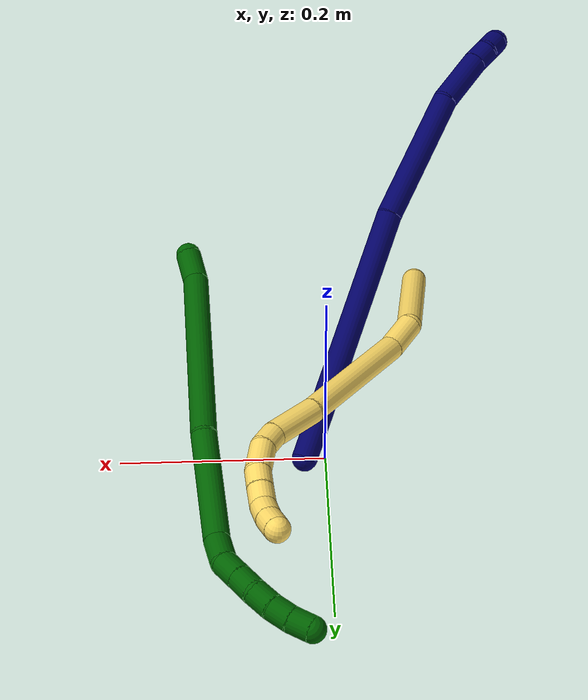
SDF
<sdf version="1.7">
 <world name="default">
  <model name="photoneo_s_sensor">
   <static>1</static>
   <pose>0 0 2 1.57079 1.57079 3.14159</pose>
   <link name="link">
    <inertial><mass>0.1</mass></inertial>
    <sensor name="sensor" type="depth">
     <update_rate>30</update_rate>
     <camera>
      <horizontal_fov>1.22</horizontal_fov>
      <image><width>1920</width><height>1200</height><format>B8G8R8</format></image>
      <clip><near>0.1</near><far>4</far></clip>
      <depth_camera><output>points</output></depth_camera>
     </camera>
     <plugin name="camera_plugin" filename="libgazebo_ros_depth_camera.so">
      <baseline>0.2</baseline>
      <alwaysOn>1</alwaysOn>
      <updateRate>0.0</updateRate>
      <cameraName>camera_ir</cameraName>
      <imageTopicName>/camera/color/image_raw</imageTopicName>
      <cameraInfoTopicName>/camera/color/camera_info</cameraInfoTopicName>
      <depthImageTopicName>/camera/depth/image_raw</depthImageTopicName>
      <depthImageCameraInfoTopicName>/camera/depth/camera_info</depthImageCameraInfoTopicName>
      <pointCloudTopicName>/camera/depth/points</pointCloudTopicName>
      <frameName>fr_optical</frameName>
      <pointCloudCutoff>0.1</pointCloudCutoff>
      <pointCloudCutoffMax>2.0</pointCloudCutoffMax>
      <distortionK1>0</distortionK1>
      <distortionK2>0</distortionK2>
      <distortionK3>0</distortionK3>
      <distortionT1>0</distortionT1>
      <distortionT2>0</distortionT2>
      <CxPrime>0</CxPrime>
      <Cx>0</Cx>
      <Cy>0</Cy>
      <focalLength>0</focalLength>
      <hackBaseline>0</hackBaseline>
     </plugin>
    </sensor>
   </link>
  </model>
  <model name="bin">
   <static>1</static>
   <link name="bottom">
    <collision name="collision-bottom">
     <pose>0 0 -0.01 0 -0 0</pose>
     <geometry><box><size>0.8 0.6 0.02</size></box></geometry>
     <surface>
      <friction><ode><mu>100</mu><mu2>100</mu2></ode></friction>
      <contact><collide_bitmask>65535</collide_bitmask></contact>
     </surface>
    </collision>
   </link>
   <link name="west_wall">
    <collision name="collision-west_wall">
     <pose>-0.41 0 0.1 0 -0 0</pose>
     <geometry><box><size>0.02 0.6 0.2</size></box></geometry>
     <surface>
      <friction><ode><mu>100</mu><mu2>100</mu2></ode></friction>
      <contact><collide_bitmask>65535</collide_bitmask></contact>
     </surface>
    </collision>
   </link>
   <link name="east_wall">
    <collision name="collision-east_wall">
     <pose>0.41 0 0.1 0 -0 0</pose>
     <geometry><box><size>0.02 0.6 0.2</size></box></geometry>
     <surface>
      <friction><ode><mu>100</mu><mu2>100</mu2></ode></friction>
      <contact><collide_bitmask>65535</collide_bitmask></contact>
     </surface>
    </collision>
   </link>
   <link name="south_wall">
    <collision name="collision-south_wall">
     <pose>0 -0.31 0.1 0 -0 0</pose>
     <geometry><box><size>0.8 0.02 0.2</size></box></geometry>
     <surface>
      <friction><ode><mu>100</mu><mu2>100</mu2></ode></friction>
      <contact><collide_bitmask>65535</collide_bitmask></contact>
     </surface>
    </collision>
   </link>
   <link name="north_wall">
    <collision name="collision-north_wall">
     <pose>0 0.31 0.1 0 -0 0</pose>
     <geometry><box><size>0.8 0.02 0.2</size></box></geometry>
     <surface>
      <friction><ode><mu>100</mu><mu2>100</mu2></ode></friction>
      <contact><collide_bitmask>65535</collide_bitmask></contact>
     </surface>
    </collision>
   </link>
  </model>
  <model name="5">
   <static>0</static>
   <link name="5">
    <collision name="collision-cylinder-e_1_1_4">
     <pose>0.051582 0.026971 -0.020256 -2.21497 0.991675 -1.6502</pose>
     <geometry><cylinder><radius>0.0125</radius><length>0.123263</length></cylinder></geometry>
     <surface>
      <friction><ode><mu>1.16</mu><mu2>1.16</mu2><slip1>0</slip1><slip2>0</slip2></ode></friction>
      <contact><ode><kp>1e+06</kp><kd>1</kd><max_vel>0</max_vel><min_depth>0.001</min_depth></ode></contact>
     </surface>
    </collision>
    <visual name="visual-cylinder-e_1_1_4">
     <pose>0.051582 0.026971 -0.020256 -2.21497 0.991675 -1.6502</pose>
     <geometry><cylinder><radius>0.0125</radius><length>0.123263</length></cylinder></geometry>
     <material><ambient>1 0.858824 0.4 1</ambient></material>
    </visual>
    <collision name="collision-cylinder-e_2_4_5">
     <pose>0.116227 0.069155 -0.04052 -1.57127 0.709479 -0.709786</pose>
     <geometry><cylinder><radius>0.0125</radius><length>0.040104</length></cylinder></geometry>
     <surface>
      <friction><ode><mu>1.16</mu><mu2>1.16</mu2><slip1>0</slip1><slip2>0</slip2></ode></friction>
      <contact><ode><kp>1e+06</kp><kd>1</kd><max_vel>0</max_vel><min_depth>0.001</min_depth></ode></contact>
     </surface>
    </collision>
    <visual name="visual-cylinder-e_2_4_5">
     <pose>0.116227 0.069155 -0.04052 -1.57127 0.709479 -0.709786</pose>
     <geometry><cylinder><radius>0.0125</radius><length>0.040104</length></cylinder></geometry>
     <material><ambient>1 0.858824 0.4 1</ambient></material>
    </visual>
    <collision name="collision-cylinder-e_3_5_6">
     <pose>0.170898 0.142988 -0.052031 -1.76459 0.608386 -0.728981</pose>
     <geometry><cylinder><radius>0.0125</radius><length>0.145602</length></cylinder></geometry>
     <surface>
      <friction><ode><mu>1.16</mu><mu2>1.16</mu2><slip1>0</slip1><slip2>0</slip2></ode></friction>
      <contact><ode><kp>1e+06</kp><kd>1</kd><max_vel>0</max_vel><min_depth>0.001</min_depth></ode></contact>
     </surface>
    </collision>
    <visual name="visual-cylinder-e_3_5_6">
     <pose>0.170898 0.142988 -0.052031 -1.76459 0.608386 -0.728981</pose>
     <geometry><cylinder><radius>0.0125</radius><length>0.145602</length></cylinder></geometry>
     <material><ambient>1 0.858824 0.4 1</ambient></material>
    </visual>
    <collision name="collision-cylinder-e_4_6_7">
     <pose>0.225113 0.2259 -0.066315 -1.6847 0.476025 -0.531056</pose>
     <geometry><cylinder><radius>0.0125</radius><length>0.055018</length></cylinder></geometry>
     <surface>
      <friction><ode><mu>1.16</mu><mu2>1.16</mu2><slip1>0</slip1><slip2>0</slip2></ode></friction>
      <contact><ode><kp>1e+06</kp><kd>1</kd><max_vel>0</max_vel><min_depth>0.001</min_depth></ode></contact>
     </surface>
    </collision>
    <visual name="visual-cylinder-e_4_6_7">
     <pose>0.225113 0.2259 -0.066315 -1.6847 0.476025 -0.531056</pose>
     <geometry><cylinder><radius>0.0125</radius><length>0.055018</length></cylinder></geometry>
     <material><ambient>1 0.858824 0.4 1</ambient></material>
    </visual>
    <collision name="collision-cylinder-e_5_7_8">
     <pose>0.245323 0.258341 -0.070453 -1.73597 0.743999 -0.863243</pose>
     <geometry><cylinder><radius>0.0125</radius><length>0.022456</length></cylinder></geometry>
     <surface>
      <friction><ode><mu>1.16</mu><mu2>1.16</mu2><slip1>0</slip1><slip2>0</slip2></ode></friction>
      <contact><ode><kp>1e+06</kp><kd>1</kd><max_vel>0</max_vel><min_depth>0.001</min_depth></ode></contact>
     </surface>
    </collision>
    <visual name="visual-cylinder-e_5_7_8">
     <pose>0.245323 0.258341 -0.070453 -1.73597 0.743999 -0.863243</pose>
     <geometry><cylinder><radius>0.0125</radius><length>0.022456</length></cylinder></geometry>
     <material><ambient>1 0.858824 0.4 1</ambient></material>
    </visual>
    <collision name="collision-cylinder-e_6_8_9">
     <pose>0.267235 0.273977 -0.072475 -1.65927 1.08708 -1.16705</pose>
     <geometry><cylinder><radius>0.0125</radius><length>0.032324</length></cylinder></geometry>
     <surface>
      <friction><ode><mu>1.16</mu><mu2>1.16</mu2><slip1>0</slip1><slip2>0</slip2></ode></friction>
      <contact><ode><kp>1e+06</kp><kd>1</kd><max_vel>0</max_vel><min_depth>0.001</min_depth></ode></contact>
     </surface>
    </collision>
    <visual name="visual-cylinder-e_6_8_9">
     <pose>0.267235 0.273977 -0.072475 -1.65927 1.08708 -1.16705</pose>
     <geometry><cylinder><radius>0.0125</radius><length>0.032324</length></cylinder></geometry>
     <material><ambient>1 0.858824 0.4 1</ambient></material>
    </visual>
    <collision name="collision-cylinder-e_7_9_10">
     <pose>0.291476 0.283787 -0.072955 -1.49166 1.34037 -1.26402</pose>
     <geometry><cylinder><radius>0.0125</radius><length>0.020407</length></cylinder></geometry>
     <surface>
      <friction><ode><mu>1.16</mu><mu2>1.16</mu2><slip1>0</slip1><slip2>0</slip2></ode></friction>
      <contact><ode><kp>1e+06</kp><kd>1</kd><max_vel>0</max_vel><min_depth>0.001</min_depth></ode></contact>
     </surface>
    </collision>
    <visual name="visual-cylinder-e_7_9_10">
     <pose>0.291476 0.283787 -0.072955 -1.49166 1.34037 -1.26402</pose>
     <geometry><cylinder><radius>0.0125</radius><length>0.020407</length></cylinder></geometry>
     <material><ambient>1 0.858824 0.4 1</ambient></material>
    </visual>
    <collision name="collision-cylinder-e_8_10_11">
     <pose>0.311459 0.288135 -0.072115 -1.25742 1.36211 -1.065</pose>
     <geometry><cylinder><radius>0.0125</radius><length>0.020544</length></cylinder></geometry>
     <surface>
      <friction><ode><mu>1.16</mu><mu2>1.16</mu2><slip1>0</slip1><slip2>0</slip2></ode></friction>
      <contact><ode><kp>1e+06</kp><kd>1</kd><max_vel>0</max_vel><min_depth>0.001</min_depth></ode></contact>
     </surface>
    </collision>
    <visual name="visual-cylinder-e_8_10_11">
     <pose>0.311459 0.288135 -0.072115 -1.25742 1.36211 -1.065</pose>
     <geometry><cylinder><radius>0.0125</radius><length>0.020544</length></cylinder></geometry>
     <material><ambient>1 0.858824 0.4 1</ambient></material>
    </visual>
    <collision name="collision-cylinder-e_9_11_12">
     <pose>0.331183 0.291193 -0.074091 -2.76738 1.28643 -2.64678</pose>
     <geometry><cylinder><radius>0.0125</radius><length>0.020158</length></cylinder></geometry>
     <surface>
      <friction><ode><mu>1.16</mu><mu2>1.16</mu2><slip1>0</slip1><slip2>0</slip2></ode></friction>
      <contact><ode><kp>1e+06</kp><kd>1</kd><max_vel>0</max_vel><min_depth>0.001</min_depth></ode></contact>
     </surface>
    </collision>
    <visual name="visual-cylinder-e_9_11_12">
     <pose>0.331183 0.291193 -0.074091 -2.76738 1.28643 -2.64678</pose>
     <geometry><cylinder><radius>0.0125</radius><length>0.020158</length></cylinder></geometry>
     <material><ambient>1 0.858824 0.4 1</ambient></material>
    </visual>
    <collision name="collision-cylinder-e_10_12_2">
     <pose>0.350328 0.292003 -0.080115 3.07571 1.22623 3.04799</pose>
     <geometry><cylinder><radius>0.0125</radius><length>0.020125</length></cylinder></geometry>
     <surface>
      <friction><ode><mu>1.16</mu><mu2>1.16</mu2><slip1>0</slip1><slip2>0</slip2></ode></friction>
      <contact><ode><kp>1e+06</kp><kd>1</kd><max_vel>0</max_vel><min_depth>0.001</min_depth></ode></contact>
     </surface>
    </collision>
    <visual name="visual-cylinder-e_10_12_2">
     <pose>0.350328 0.292003 -0.080115 3.07571 1.22623 3.04799</pose>
     <geometry><cylinder><radius>0.0125</radius><length>0.020125</length></cylinder></geometry>
     <material><ambient>1 0.858824 0.4 1</ambient></material>
    </visual>
    <collision name="collision-sphere-2">
     <pose>0.359799 0.291779 -0.083506 0 -0 0</pose>
     <geometry><sphere><radius>0.0125</radius></sphere></geometry>
     <surface>
      <friction><ode><mu>1.16</mu><mu2>1.16</mu2><slip1>0</slip1><slip2>0</slip2></ode></friction>
      <contact><ode><kp>1e+06</kp><kd>1</kd><max_vel>0</max_vel><min_depth>0.001</min_depth></ode></contact>
     </surface>
    </collision>
    <visual name="visual-sphere-2">
     <pose>0.359799 0.291779 -0.083506 0 -0 0</pose>
     <geometry><sphere><radius>0.0125</radius></sphere></geometry>
     <material><ambient>1 0.858824 0.4 1</ambient></material>
    </visual>
    <collision name="collision-sphere-12">
     <pose>0.340857 0.292226 -0.076723 0 -0 0</pose>
     <geometry><sphere><radius>0.0125</radius></sphere></geometry>
     <surface>
      <friction><ode><mu>1.16</mu><mu2>1.16</mu2><slip1>0</slip1><slip2>0</slip2></ode></friction>
      <contact><ode><kp>1e+06</kp><kd>1</kd><max_vel>0</max_vel><min_depth>0.001</min_depth></ode></contact>
     </surface>
    </collision>
    <visual name="visual-sphere-12">
     <pose>0.340857 0.292226 -0.076723 0 -0 0</pose>
     <geometry><sphere><radius>0.0125</radius></sphere></geometry>
     <material><ambient>1 0.858824 0.4 1</ambient></material>
    </visual>
    <collision name="collision-sphere-11">
     <pose>0.321508 0.290159 -0.071459 0 -0 0</pose>
     <geometry><sphere><radius>0.0125</radius></sphere></geometry>
     <surface>
      <friction><ode><mu>1.16</mu><mu2>1.16</mu2><slip1>0</slip1><slip2>0</slip2></ode></friction>
      <contact><ode><kp>1e+06</kp><kd>1</kd><max_vel>0</max_vel><min_depth>0.001</min_depth></ode></contact>
     </surface>
    </collision>
    <visual name="visual-sphere-11">
     <pose>0.321508 0.290159 -0.071459 0 -0 0</pose>
     <geometry><sphere><radius>0.0125</radius></sphere></geometry>
     <material><ambient>1 0.858824 0.4 1</ambient></material>
    </visual>
    <collision name="collision-sphere-10">
     <pose>0.30141 0.28611 -0.072771 0 -0 0</pose>
     <geometry><sphere><radius>0.0125</radius></sphere></geometry>
     <surface>
      <friction><ode><mu>1.16</mu><mu2>1.16</mu2><slip1>0</slip1><slip2>0</slip2></ode></friction>
      <contact><ode><kp>1e+06</kp><kd>1</kd><max_vel>0</max_vel><min_depth>0.001</min_depth></ode></contact>
     </surface>
    </collision>
    <visual name="visual-sphere-10">
     <pose>0.30141 0.28611 -0.072771 0 -0 0</pose>
     <geometry><sphere><radius>0.0125</radius></sphere></geometry>
     <material><ambient>1 0.858824 0.4 1</ambient></material>
    </visual>
    <collision name="collision-sphere-9">
     <pose>0.281543 0.281464 -0.073139 0 -0 0</pose>
     <geometry><sphere><radius>0.0125</radius></sphere></geometry>
     <surface>
      <friction><ode><mu>1.16</mu><mu2>1.16</mu2><slip1>0</slip1><slip2>0</slip2></ode></friction>
      <contact><ode><kp>1e+06</kp><kd>1</kd><max_vel>0</max_vel><min_depth>0.001</min_depth></ode></contact>
     </surface>
    </collision>
    <visual name="visual-sphere-9">
     <pose>0.281543 0.281464 -0.073139 0 -0 0</pose>
     <geometry><sphere><radius>0.0125</radius></sphere></geometry>
     <material><ambient>1 0.858824 0.4 1</ambient></material>
    </visual>
    <collision name="collision-sphere-4">
     <pose>0.103164 0.053941 -0.040512 0 -0 0</pose>
     <geometry><sphere><radius>0.0125</radius></sphere></geometry>
     <surface>
      <friction><ode><mu>1.16</mu><mu2>1.16</mu2><slip1>0</slip1><slip2>0</slip2></ode></friction>
      <contact><ode><kp>1e+06</kp><kd>1</kd><max_vel>0</max_vel><min_depth>0.001</min_depth></ode></contact>
     </surface>
    </collision>
    <visual name="visual-sphere-4">
     <pose>0.103164 0.053941 -0.040512 0 -0 0</pose>
     <geometry><sphere><radius>0.0125</radius></sphere></geometry>
     <material><ambient>1 0.858824 0.4 1</ambient></material>
    </visual>
    <collision name="collision-sphere-1">
     <geometry><sphere><radius>0.0125</radius></sphere></geometry>
     <surface>
      <friction><ode><mu>1.16</mu><mu2>1.16</mu2><slip1>0</slip1><slip2>0</slip2></ode></friction>
      <contact><ode><kp>1e+06</kp><kd>1</kd><max_vel>0</max_vel><min_depth>0.001</min_depth></ode></contact>
     </surface>
    </collision>
    <visual name="visual-sphere-1">
     <geometry><sphere><radius>0.0125</radius></sphere></geometry>
     <material><ambient>1 0.858824 0.4 1</ambient></material>
    </visual>
    <collision name="collision-sphere-8">
     <pose>0.252927 0.26649 -0.071811 0 -0 0</pose>
     <geometry><sphere><radius>0.0125</radius></sphere></geometry>
     <surface>
      <friction><ode><mu>1.16</mu><mu2>1.16</mu2><slip1>0</slip1><slip2>0</slip2></ode></friction>
      <contact><ode><kp>1e+06</kp><kd>1</kd><max_vel>0</max_vel><min_depth>0.001</min_depth></ode></contact>
     </surface>
    </collision>
    <visual name="visual-sphere-8">
     <pose>0.252927 0.26649 -0.071811 0 -0 0</pose>
     <geometry><sphere><radius>0.0125</radius></sphere></geometry>
     <material><ambient>1 0.858824 0.4 1</ambient></material>
    </visual>
    <collision name="collision-sphere-5">
     <pose>0.12929 0.084368 -0.040527 0 -0 0</pose>
     <geometry><sphere><radius>0.0125</radius></sphere></geometry>
     <surface>
      <friction><ode><mu>1.16</mu><mu2>1.16</mu2><slip1>0</slip1><slip2>0</slip2></ode></friction>
      <contact><ode><kp>1e+06</kp><kd>1</kd><max_vel>0</max_vel><min_depth>0.001</min_depth></ode></contact>
     </surface>
    </collision>
    <visual name="visual-sphere-5">
     <pose>0.12929 0.084368 -0.040527 0 -0 0</pose>
     <geometry><sphere><radius>0.0125</radius></sphere></geometry>
     <material><ambient>1 0.858824 0.4 1</ambient></material>
    </visual>
    <collision name="collision-sphere-6">
     <pose>0.212507 0.201608 -0.063536 0 -0 0</pose>
     <geometry><sphere><radius>0.0125</radius></sphere></geometry>
     <surface>
      <friction><ode><mu>1.16</mu><mu2>1.16</mu2><slip1>0</slip1><slip2>0</slip2></ode></friction>
      <contact><ode><kp>1e+06</kp><kd>1</kd><max_vel>0</max_vel><min_depth>0.001</min_depth></ode></contact>
     </surface>
    </collision>
    <visual name="visual-sphere-6">
     <pose>0.212507 0.201608 -0.063536 0 -0 0</pose>
     <geometry><sphere><radius>0.0125</radius></sphere></geometry>
     <material><ambient>1 0.858824 0.4 1</ambient></material>
    </visual>
    <collision name="collision-sphere-7">
     <pose>0.237719 0.250192 -0.069094 0 -0 0</pose>
     <geometry><sphere><radius>0.0125</radius></sphere></geometry>
     <surface>
      <friction><ode><mu>1.16</mu><mu2>1.16</mu2><slip1>0</slip1><slip2>0</slip2></ode></friction>
      <contact><ode><kp>1e+06</kp><kd>1</kd><max_vel>0</max_vel><min_depth>0.001</min_depth></ode></contact>
     </surface>
    </collision>
    <visual name="visual-sphere-7">
     <pose>0.237719 0.250192 -0.069094 0 -0 0</pose>
     <geometry><sphere><radius>0.0125</radius></sphere></geometry>
     <material><ambient>1 0.858824 0.4 1</ambient></material>
    </visual>
    <inertial>
     <pose>0.177015 0.15492 -0.050694 0 -0 0</pose>
     <mass>0.5</mass>
     <inertia>
      <ixx>-4.6e-05</ixx>
      <ixy>0</ixy>
      <ixz>0</ixz>
      <iyy>-3.3e-05</iyy>
      <iyz>0</iyz>
      <izz>-0.000619</izz>
     </inertia>
    </inertial>
   </link>
   <pose>-0.10549 -0.250383 0.011482 3.05425 0.049175 1.88548</pose>
  </model>
  <model name="6">
   <static>0</static>
   <link name="6">
    <collision name="collision-cylinder-e_1_1_4">
     <pose>0.009204 0.013433 0.002909 -1.35756 0.590048 -0.480785</pose>
     <geometry><cylinder><radius>0.0125</radius><length>0.033083</length></cylinder></geometry>
     <surface>
      <friction><ode><mu>1.16</mu><mu2>1.16</mu2><slip1>0</slip1><slip2>0</slip2></ode></friction>
      <contact><ode><kp>1e+06</kp><kd>1</kd><max_vel>0</max_vel><min_depth>0.001</min_depth></ode></contact>
     </surface>
    </collision>
    <visual name="visual-cylinder-e_1_1_4">
     <pose>0.009204 0.013433 0.002909 -1.35756 0.590048 -0.480785</pose>
     <geometry><cylinder><radius>0.0125</radius><length>0.033083</length></cylinder></geometry>
     <material><ambient>0 0.392157 0.003922 1</ambient></material>
    </visual>
    <collision name="collision-cylinder-e_2_4_5">
     <pose>0.073224 0.118461 -0.007285 -1.71288 0.534843 -0.612079</pose>
     <geometry><cylinder><radius>0.0125</radius><length>0.215092</length></cylinder></geometry>
     <surface>
      <friction><ode><mu>1.16</mu><mu2>1.16</mu2><slip1>0</slip1><slip2>0</slip2></ode></friction>
      <contact><ode><kp>1e+06</kp><kd>1</kd><max_vel>0</max_vel><min_depth>0.001</min_depth></ode></contact>
     </surface>
    </collision>
    <visual name="visual-cylinder-e_2_4_5">
     <pose>0.073224 0.118461 -0.007285 -1.71288 0.534843 -0.612079</pose>
     <geometry><cylinder><radius>0.0125</radius><length>0.215092</length></cylinder></geometry>
     <material><ambient>0 0.392157 0.003922 1</ambient></material>
    </visual>
    <collision name="collision-cylinder-e_3_5_6">
     <pose>0.15452 0.258863 -0.014295 -1.44661 0.493844 -0.437975</pose>
     <geometry><cylinder><radius>0.0125</radius><length>0.111722</length></cylinder></geometry>
     <surface>
      <friction><ode><mu>1.16</mu><mu2>1.16</mu2><slip1>0</slip1><slip2>0</slip2></ode></friction>
      <contact><ode><kp>1e+06</kp><kd>1</kd><max_vel>0</max_vel><min_depth>0.001</min_depth></ode></contact>
     </surface>
    </collision>
    <visual name="visual-cylinder-e_3_5_6">
     <pose>0.15452 0.258863 -0.014295 -1.44661 0.493844 -0.437975</pose>
     <geometry><cylinder><radius>0.0125</radius><length>0.111722</length></cylinder></geometry>
     <material><ambient>0 0.392157 0.003922 1</ambient></material>
    </visual>
    <collision name="collision-cylinder-e_4_6_7">
     <pose>0.190649 0.31838 -0.009941 -1.73178 0.726926 -0.840897</pose>
     <geometry><cylinder><radius>0.0125</radius><length>0.029041</length></cylinder></geometry>
     <surface>
      <friction><ode><mu>1.16</mu><mu2>1.16</mu2><slip1>0</slip1><slip2>0</slip2></ode></friction>
      <contact><ode><kp>1e+06</kp><kd>1</kd><max_vel>0</max_vel><min_depth>0.001</min_depth></ode></contact>
     </surface>
    </collision>
    <visual name="visual-cylinder-e_4_6_7">
     <pose>0.190649 0.31838 -0.009941 -1.73178 0.726926 -0.840897</pose>
     <geometry><cylinder><radius>0.0125</radius><length>0.029041</length></cylinder></geometry>
     <material><ambient>0 0.392157 0.003922 1</ambient></material>
    </visual>
    <collision name="collision-cylinder-e_5_7_8">
     <pose>0.211266 0.334708 -0.011368 -1.51531 1.09683 -1.04808</pose>
     <geometry><cylinder><radius>0.0125</radius><length>0.024654</length></cylinder></geometry>
     <surface>
      <friction><ode><mu>1.16</mu><mu2>1.16</mu2><slip1>0</slip1><slip2>0</slip2></ode></friction>
      <contact><ode><kp>1e+06</kp><kd>1</kd><max_vel>0</max_vel><min_depth>0.001</min_depth></ode></contact>
     </surface>
    </collision>
    <visual name="visual-cylinder-e_5_7_8">
     <pose>0.211266 0.334708 -0.011368 -1.51531 1.09683 -1.04808</pose>
     <geometry><cylinder><radius>0.0125</radius><length>0.024654</length></cylinder></geometry>
     <material><ambient>0 0.392157 0.003922 1</ambient></material>
    </visual>
    <collision name="collision-cylinder-e_6_8_9">
     <pose>0.232317 0.345591 -0.010802 -1.52261 1.08898 -1.04675</pose>
     <geometry><cylinder><radius>0.0125</radius><length>0.022755</length></cylinder></geometry>
     <surface>
      <friction><ode><mu>1.16</mu><mu2>1.16</mu2><slip1>0</slip1><slip2>0</slip2></ode></friction>
      <contact><ode><kp>1e+06</kp><kd>1</kd><max_vel>0</max_vel><min_depth>0.001</min_depth></ode></contact>
     </surface>
    </collision>
    <visual name="visual-cylinder-e_6_8_9">
     <pose>0.232317 0.345591 -0.010802 -1.52261 1.08898 -1.04675</pose>
     <geometry><cylinder><radius>0.0125</radius><length>0.022755</length></cylinder></geometry>
     <material><ambient>0 0.392157 0.003922 1</ambient></material>
    </visual>
    <collision name="collision-cylinder-e_7_9_10">
     <pose>0.251889 0.35506 -0.007443 -0.934501 1.06746 -0.57949</pose>
     <geometry><cylinder><radius>0.0125</radius><length>0.021668</length></cylinder></geometry>
     <surface>
      <friction><ode><mu>1.16</mu><mu2>1.16</mu2><slip1>0</slip1><slip2>0</slip2></ode></friction>
      <contact><ode><kp>1e+06</kp><kd>1</kd><max_vel>0</max_vel><min_depth>0.001</min_depth></ode></contact>
     </surface>
    </collision>
    <visual name="visual-cylinder-e_7_9_10">
     <pose>0.251889 0.35506 -0.007443 -0.934501 1.06746 -0.57949</pose>
     <geometry><cylinder><radius>0.0125</radius><length>0.021668</length></cylinder></geometry>
     <material><ambient>0 0.392157 0.003922 1</ambient></material>
    </visual>
    <collision name="collision-cylinder-e_8_10_11">
     <pose>0.270699 0.361943 -0.000753 -0.641879 1.12301 -0.412291</pose>
     <geometry><cylinder><radius>0.0125</radius><length>0.020677</length></cylinder></geometry>
     <surface>
      <friction><ode><mu>1.16</mu><mu2>1.16</mu2><slip1>0</slip1><slip2>0</slip2></ode></friction>
      <contact><ode><kp>1e+06</kp><kd>1</kd><max_vel>0</max_vel><min_depth>0.001</min_depth></ode></contact>
     </surface>
    </collision>
    <visual name="visual-cylinder-e_8_10_11">
     <pose>0.270699 0.361943 -0.000753 -0.641879 1.12301 -0.412291</pose>
     <geometry><cylinder><radius>0.0125</radius><length>0.020677</length></cylinder></geometry>
     <material><ambient>0 0.392157 0.003922 1</ambient></material>
    </visual>
    <collision name="collision-cylinder-e_9_11_2">
     <pose>0.289993 0.365991 0.006317 -0.374108 1.21185 -0.260787</pose>
     <geometry><cylinder><radius>0.0125</radius><length>0.021309</length></cylinder></geometry>
     <surface>
      <friction><ode><mu>1.16</mu><mu2>1.16</mu2><slip1>0</slip1><slip2>0</slip2></ode></friction>
      <contact><ode><kp>1e+06</kp><kd>1</kd><max_vel>0</max_vel><min_depth>0.001</min_depth></ode></contact>
     </surface>
    </collision>
    <visual name="visual-cylinder-e_9_11_2">
     <pose>0.289993 0.365991 0.006317 -0.374108 1.21185 -0.260787</pose>
     <geometry><cylinder><radius>0.0125</radius><length>0.021309</length></cylinder></geometry>
     <material><ambient>0 0.392157 0.003922 1</ambient></material>
    </visual>
    <collision name="collision-sphere-2">
     <pose>0.299969 0.367359 0.009801 0 -0 0</pose>
     <geometry><sphere><radius>0.0125</radius></sphere></geometry>
     <surface>
      <friction><ode><mu>1.16</mu><mu2>1.16</mu2><slip1>0</slip1><slip2>0</slip2></ode></friction>
      <contact><ode><kp>1e+06</kp><kd>1</kd><max_vel>0</max_vel><min_depth>0.001</min_depth></ode></contact>
     </surface>
    </collision>
    <visual name="visual-sphere-2">
     <pose>0.299969 0.367359 0.009801 0 -0 0</pose>
     <geometry><sphere><radius>0.0125</radius></sphere></geometry>
     <material><ambient>0 0.392157 0.003922 1</ambient></material>
    </visual>
    <collision name="collision-sphere-11">
     <pose>0.280018 0.364623 0.002833 0 -0 0</pose>
     <geometry><sphere><radius>0.0125</radius></sphere></geometry>
     <surface>
      <friction><ode><mu>1.16</mu><mu2>1.16</mu2><slip1>0</slip1><slip2>0</slip2></ode></friction>
      <contact><ode><kp>1e+06</kp><kd>1</kd><max_vel>0</max_vel><min_depth>0.001</min_depth></ode></contact>
     </surface>
    </collision>
    <visual name="visual-sphere-11">
     <pose>0.280018 0.364623 0.002833 0 -0 0</pose>
     <geometry><sphere><radius>0.0125</radius></sphere></geometry>
     <material><ambient>0 0.392157 0.003922 1</ambient></material>
    </visual>
    <collision name="collision-sphere-10">
     <pose>0.261379 0.359264 -0.004338 0 -0 0</pose>
     <geometry><sphere><radius>0.0125</radius></sphere></geometry>
     <surface>
      <friction><ode><mu>1.16</mu><mu2>1.16</mu2><slip1>0</slip1><slip2>0</slip2></ode></friction>
      <contact><ode><kp>1e+06</kp><kd>1</kd><max_vel>0</max_vel><min_depth>0.001</min_depth></ode></contact>
     </surface>
    </collision>
    <visual name="visual-sphere-10">
     <pose>0.261379 0.359264 -0.004338 0 -0 0</pose>
     <geometry><sphere><radius>0.0125</radius></sphere></geometry>
     <material><ambient>0 0.392157 0.003922 1</ambient></material>
    </visual>
    <collision name="collision-sphere-9">
     <pose>0.242399 0.350857 -0.010548 0 -0 0</pose>
     <geometry><sphere><radius>0.0125</radius></sphere></geometry>
     <surface>
      <friction><ode><mu>1.16</mu><mu2>1.16</mu2><slip1>0</slip1><slip2>0</slip2></ode></friction>
      <contact><ode><kp>1e+06</kp><kd>1</kd><max_vel>0</max_vel><min_depth>0.001</min_depth></ode></contact>
     </surface>
    </collision>
    <visual name="visual-sphere-9">
     <pose>0.242399 0.350857 -0.010548 0 -0 0</pose>
     <geometry><sphere><radius>0.0125</radius></sphere></geometry>
     <material><ambient>0 0.392157 0.003922 1</ambient></material>
    </visual>
    <collision name="collision-sphere-4">
     <pose>0.018407 0.026866 0.005817 0 -0 0</pose>
     <geometry><sphere><radius>0.0125</radius></sphere></geometry>
     <surface>
      <friction><ode><mu>1.16</mu><mu2>1.16</mu2><slip1>0</slip1><slip2>0</slip2></ode></friction>
      <contact><ode><kp>1e+06</kp><kd>1</kd><max_vel>0</max_vel><min_depth>0.001</min_depth></ode></contact>
     </surface>
    </collision>
    <visual name="visual-sphere-4">
     <pose>0.018407 0.026866 0.005817 0 -0 0</pose>
     <geometry><sphere><radius>0.0125</radius></sphere></geometry>
     <material><ambient>0 0.392157 0.003922 1</ambient></material>
    </visual>
    <collision name="collision-sphere-1">
     <geometry><sphere><radius>0.0125</radius></sphere></geometry>
     <surface>
      <friction><ode><mu>1.16</mu><mu2>1.16</mu2><slip1>0</slip1><slip2>0</slip2></ode></friction>
      <contact><ode><kp>1e+06</kp><kd>1</kd><max_vel>0</max_vel><min_depth>0.001</min_depth></ode></contact>
     </surface>
    </collision>
    <visual name="visual-sphere-1">
     <geometry><sphere><radius>0.0125</radius></sphere></geometry>
     <material><ambient>0 0.392157 0.003922 1</ambient></material>
    </visual>
    <collision name="collision-sphere-8">
     <pose>0.222235 0.340325 -0.011056 0 -0 0</pose>
     <geometry><sphere><radius>0.0125</radius></sphere></geometry>
     <surface>
      <friction><ode><mu>1.16</mu><mu2>1.16</mu2><slip1>0</slip1><slip2>0</slip2></ode></friction>
      <contact><ode><kp>1e+06</kp><kd>1</kd><max_vel>0</max_vel><min_depth>0.001</min_depth></ode></contact>
     </surface>
    </collision>
    <visual name="visual-sphere-8">
     <pose>0.222235 0.340325 -0.011056 0 -0 0</pose>
     <geometry><sphere><radius>0.0125</radius></sphere></geometry>
     <material><ambient>0 0.392157 0.003922 1</ambient></material>
    </visual>
    <collision name="collision-sphere-5">
     <pose>0.128041 0.210055 -0.020388 0 -0 0</pose>
     <geometry><sphere><radius>0.0125</radius></sphere></geometry>
     <surface>
      <friction><ode><mu>1.16</mu><mu2>1.16</mu2><slip1>0</slip1><slip2>0</slip2></ode></friction>
      <contact><ode><kp>1e+06</kp><kd>1</kd><max_vel>0</max_vel><min_depth>0.001</min_depth></ode></contact>
     </surface>
    </collision>
    <visual name="visual-sphere-5">
     <pose>0.128041 0.210055 -0.020388 0 -0 0</pose>
     <geometry><sphere><radius>0.0125</radius></sphere></geometry>
     <material><ambient>0 0.392157 0.003922 1</ambient></material>
    </visual>
    <collision name="collision-sphere-6">
     <pose>0.180999 0.307671 -0.008202 0 -0 0</pose>
     <geometry><sphere><radius>0.0125</radius></sphere></geometry>
     <surface>
      <friction><ode><mu>1.16</mu><mu2>1.16</mu2><slip1>0</slip1><slip2>0</slip2></ode></friction>
      <contact><ode><kp>1e+06</kp><kd>1</kd><max_vel>0</max_vel><min_depth>0.001</min_depth></ode></contact>
     </surface>
    </collision>
    <visual name="visual-sphere-6">
     <pose>0.180999 0.307671 -0.008202 0 -0 0</pose>
     <geometry><sphere><radius>0.0125</radius></sphere></geometry>
     <material><ambient>0 0.392157 0.003922 1</ambient></material>
    </visual>
    <collision name="collision-sphere-7">
     <pose>0.200298 0.32909 -0.01168 0 -0 0</pose>
     <geometry><sphere><radius>0.0125</radius></sphere></geometry>
     <surface>
      <friction><ode><mu>1.16</mu><mu2>1.16</mu2><slip1>0</slip1><slip2>0</slip2></ode></friction>
      <contact><ode><kp>1e+06</kp><kd>1</kd><max_vel>0</max_vel><min_depth>0.001</min_depth></ode></contact>
     </surface>
    </collision>
    <visual name="visual-sphere-7">
     <pose>0.200298 0.32909 -0.01168 0 -0 0</pose>
     <geometry><sphere><radius>0.0125</radius></sphere></geometry>
     <material><ambient>0 0.392157 0.003922 1</ambient></material>
    </visual>
    <inertial>
     <pose>0.133167 0.206366 -0.00785 0 -0 0</pose>
     <mass>0.5</mass>
     <inertia>
      <ixx>0.000252</ixx>
      <ixy>0</ixy>
      <ixz>0</ixz>
      <iyy>-0.000242</iyy>
      <iyz>0</iyz>
      <izz>-0.001324</izz>
     </inertia>
    </inertial>
   </link>
   <pose>0.131039 -0.1948 0.099856 -2.78864 -0.31426 2.60812</pose>
  </model>
  <model name="7">
   <static>0</static>
   <link name="7">
    <collision name="collision-cylinder-e_1_1_4">
     <pose>3e-06 0.000513 0.130298 -0.003939 2.4e-05 -0</pose>
     <geometry><cylinder><radius>0.0125</radius><length>0.260598</length></cylinder></geometry>
     <surface>
      <friction><ode><mu>1.16</mu><mu2>1.16</mu2><slip1>0</slip1><slip2>0</slip2></ode></friction>
      <contact><ode><kp>1e+06</kp><kd>1</kd><max_vel>0</max_vel><min_depth>0.001</min_depth></ode></contact>
     </surface>
    </collision>
    <visual name="visual-cylinder-e_1_1_4">
     <pose>3e-06 0.000513 0.130298 -0.003939 2.4e-05 -0</pose>
     <geometry><cylinder><radius>0.0125</radius><length>0.260598</length></cylinder></geometry>
     <material><ambient>0.003922 0 0.403922 1</ambient></material>
    </visual>
    <collision name="collision-cylinder-e_2_4_5">
     <pose>0.003391 -0.007315 0.329418 0.120618 0.048791 0.002947</pose>
     <geometry><cylinder><radius>0.0125</radius><length>0.138817</length></cylinder></geometry>
     <surface>
      <friction><ode><mu>1.16</mu><mu2>1.16</mu2><slip1>0</slip1><slip2>0</slip2></ode></friction>
      <contact><ode><kp>1e+06</kp><kd>1</kd><max_vel>0</max_vel><min_depth>0.001</min_depth></ode></contact>
     </surface>
    </collision>
    <visual name="visual-cylinder-e_2_4_5">
     <pose>0.003391 -0.007315 0.329418 0.120618 0.048791 0.002947</pose>
     <geometry><cylinder><radius>0.0125</radius><length>0.138817</length></cylinder></geometry>
     <material><ambient>0.003922 0 0.403922 1</ambient></material>
    </visual>
    <collision name="collision-cylinder-e_3_5_6">
     <pose>0.012306 -0.025372 0.425804 0.338868 0.186989 0.03208</pose>
     <geometry><cylinder><radius>0.0125</radius><length>0.059487</length></cylinder></geometry>
     <surface>
      <friction><ode><mu>1.16</mu><mu2>1.16</mu2><slip1>0</slip1><slip2>0</slip2></ode></friction>
      <contact><ode><kp>1e+06</kp><kd>1</kd><max_vel>0</max_vel><min_depth>0.001</min_depth></ode></contact>
     </surface>
    </collision>
    <visual name="visual-cylinder-e_3_5_6">
     <pose>0.012306 -0.025372 0.425804 0.338868 0.186989 0.03208</pose>
     <geometry><cylinder><radius>0.0125</radius><length>0.059487</length></cylinder></geometry>
     <material><ambient>0.003922 0 0.403922 1</ambient></material>
    </visual>
    <collision name="collision-cylinder-e_4_6_7">
     <pose>0.019419 -0.039275 0.462539 0.428382 0.155829 0.033963</pose>
     <geometry><cylinder><radius>0.0125</radius><length>0.020414</length></cylinder></geometry>
     <surface>
      <friction><ode><mu>1.16</mu><mu2>1.16</mu2><slip1>0</slip1><slip2>0</slip2></ode></friction>
      <contact><ode><kp>1e+06</kp><kd>1</kd><max_vel>0</max_vel><min_depth>0.001</min_depth></ode></contact>
     </surface>
    </collision>
    <visual name="visual-cylinder-e_4_6_7">
     <pose>0.019419 -0.039275 0.462539 0.428382 0.155829 0.033963</pose>
     <geometry><cylinder><radius>0.0125</radius><length>0.020414</length></cylinder></geometry>
     <material><ambient>0.003922 0 0.403922 1</ambient></material>
    </visual>
    <collision name="collision-cylinder-e_5_7_2">
     <pose>0.02537 -0.047598 0.480125 0.456661 0.435864 0.102831</pose>
     <geometry><cylinder><radius>0.0125</radius><length>0.020684</length></cylinder></geometry>
     <surface>
      <friction><ode><mu>1.16</mu><mu2>1.16</mu2><slip1>0</slip1><slip2>0</slip2></ode></friction>
      <contact><ode><kp>1e+06</kp><kd>1</kd><max_vel>0</max_vel><min_depth>0.001</min_depth></ode></contact>
     </surface>
    </collision>
    <visual name="visual-cylinder-e_5_7_2">
     <pose>0.02537 -0.047598 0.480125 0.456661 0.435864 0.102831</pose>
     <geometry><cylinder><radius>0.0125</radius><length>0.020684</length></cylinder></geometry>
     <material><ambient>0.003922 0 0.403922 1</ambient></material>
    </visual>
    <collision name="collision-sphere-2">
     <pose>0.029736 -0.051732 0.48854 0 -0 0</pose>
     <geometry><sphere><radius>0.0125</radius></sphere></geometry>
     <surface>
      <friction><ode><mu>1.16</mu><mu2>1.16</mu2><slip1>0</slip1><slip2>0</slip2></ode></friction>
      <contact><ode><kp>1e+06</kp><kd>1</kd><max_vel>0</max_vel><min_depth>0.001</min_depth></ode></contact>
     </surface>
    </collision>
    <visual name="visual-sphere-2">
     <pose>0.029736 -0.051732 0.48854 0 -0 0</pose>
     <geometry><sphere><radius>0.0125</radius></sphere></geometry>
     <material><ambient>0.003922 0 0.403922 1</ambient></material>
    </visual>
    <collision name="collision-sphere-7">
     <pose>0.021003 -0.043464 0.471711 0 -0 0</pose>
     <geometry><sphere><radius>0.0125</radius></sphere></geometry>
     <surface>
      <friction><ode><mu>1.16</mu><mu2>1.16</mu2><slip1>0</slip1><slip2>0</slip2></ode></friction>
      <contact><ode><kp>1e+06</kp><kd>1</kd><max_vel>0</max_vel><min_depth>0.001</min_depth></ode></contact>
     </surface>
    </collision>
    <visual name="visual-sphere-7">
     <pose>0.021003 -0.043464 0.471711 0 -0 0</pose>
     <geometry><sphere><radius>0.0125</radius></sphere></geometry>
     <material><ambient>0.003922 0 0.403922 1</ambient></material>
    </visual>
    <collision name="collision-sphere-6">
     <pose>0.017835 -0.035087 0.453367 0 -0 0</pose>
     <geometry><sphere><radius>0.0125</radius></sphere></geometry>
     <surface>
      <friction><ode><mu>1.16</mu><mu2>1.16</mu2><slip1>0</slip1><slip2>0</slip2></ode></friction>
      <contact><ode><kp>1e+06</kp><kd>1</kd><max_vel>0</max_vel><min_depth>0.001</min_depth></ode></contact>
     </surface>
    </collision>
    <visual name="visual-sphere-6">
     <pose>0.017835 -0.035087 0.453367 0 -0 0</pose>
     <geometry><sphere><radius>0.0125</radius></sphere></geometry>
     <material><ambient>0.003922 0 0.403922 1</ambient></material>
    </visual>
    <collision name="collision-sphere-5">
     <pose>0.006776 -0.015657 0.39824 0 -0 0</pose>
     <geometry><sphere><radius>0.0125</radius></sphere></geometry>
     <surface>
      <friction><ode><mu>1.16</mu><mu2>1.16</mu2><slip1>0</slip1><slip2>0</slip2></ode></friction>
      <contact><ode><kp>1e+06</kp><kd>1</kd><max_vel>0</max_vel><min_depth>0.001</min_depth></ode></contact>
     </surface>
    </collision>
    <visual name="visual-sphere-5">
     <pose>0.006776 -0.015657 0.39824 0 -0 0</pose>
     <geometry><sphere><radius>0.0125</radius></sphere></geometry>
     <material><ambient>0.003922 0 0.403922 1</ambient></material>
    </visual>
    <collision name="collision-sphere-1">
     <geometry><sphere><radius>0.0125</radius></sphere></geometry>
     <surface>
      <friction><ode><mu>1.16</mu><mu2>1.16</mu2><slip1>0</slip1><slip2>0</slip2></ode></friction>
      <contact><ode><kp>1e+06</kp><kd>1</kd><max_vel>0</max_vel><min_depth>0.001</min_depth></ode></contact>
     </surface>
    </collision>
    <visual name="visual-sphere-1">
     <geometry><sphere><radius>0.0125</radius></sphere></geometry>
     <material><ambient>0.003922 0 0.403922 1</ambient></material>
    </visual>
    <collision name="collision-sphere-4">
     <pose>6e-06 0.001027 0.260596 0 -0 0</pose>
     <geometry><sphere><radius>0.0125</radius></sphere></geometry>
     <surface>
      <friction><ode><mu>1.16</mu><mu2>1.16</mu2><slip1>0</slip1><slip2>0</slip2></ode></friction>
      <contact><ode><kp>1e+06</kp><kd>1</kd><max_vel>0</max_vel><min_depth>0.001</min_depth></ode></contact>
     </surface>
    </collision>
    <visual name="visual-sphere-4">
     <pose>6e-06 0.001027 0.260596 0 -0 0</pose>
     <geometry><sphere><radius>0.0125</radius></sphere></geometry>
     <material><ambient>0.003922 0 0.403922 1</ambient></material>
    </visual>
    <inertial>
     <pose>0.00425 -0.008355 0.248774 0 -0 0</pose>
     <mass>0.5</mass>
     <inertia>
      <ixx>0.001739</ixx>
      <ixy>0</ixy>
      <ixz>0</ixz>
      <iyy>0.001731</iyy>
      <iyz>0</iyz>
      <izz>5.2e-05</izz>
     </inertia>
    </inertial>
   </link>
   <pose>0.02052 0.010775 0.012023 0.666111 0.828656 -1.18583</pose>
  </model>
 </world>
</sdf>
